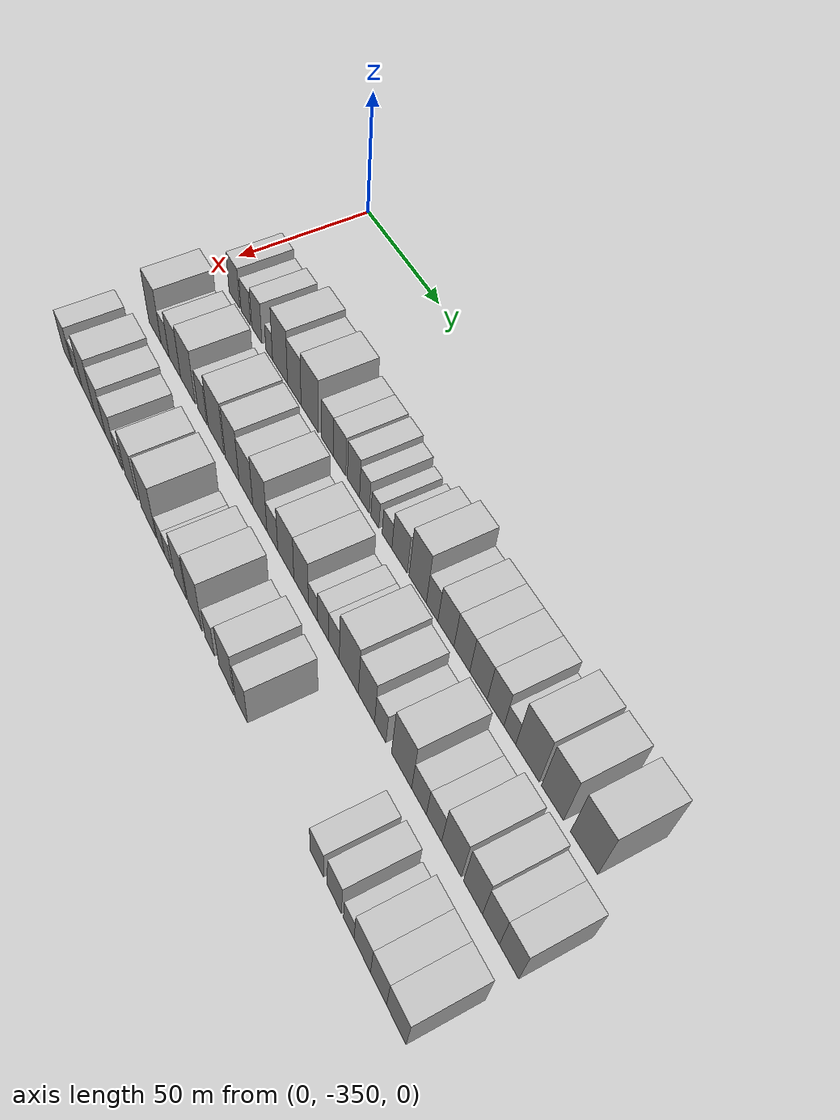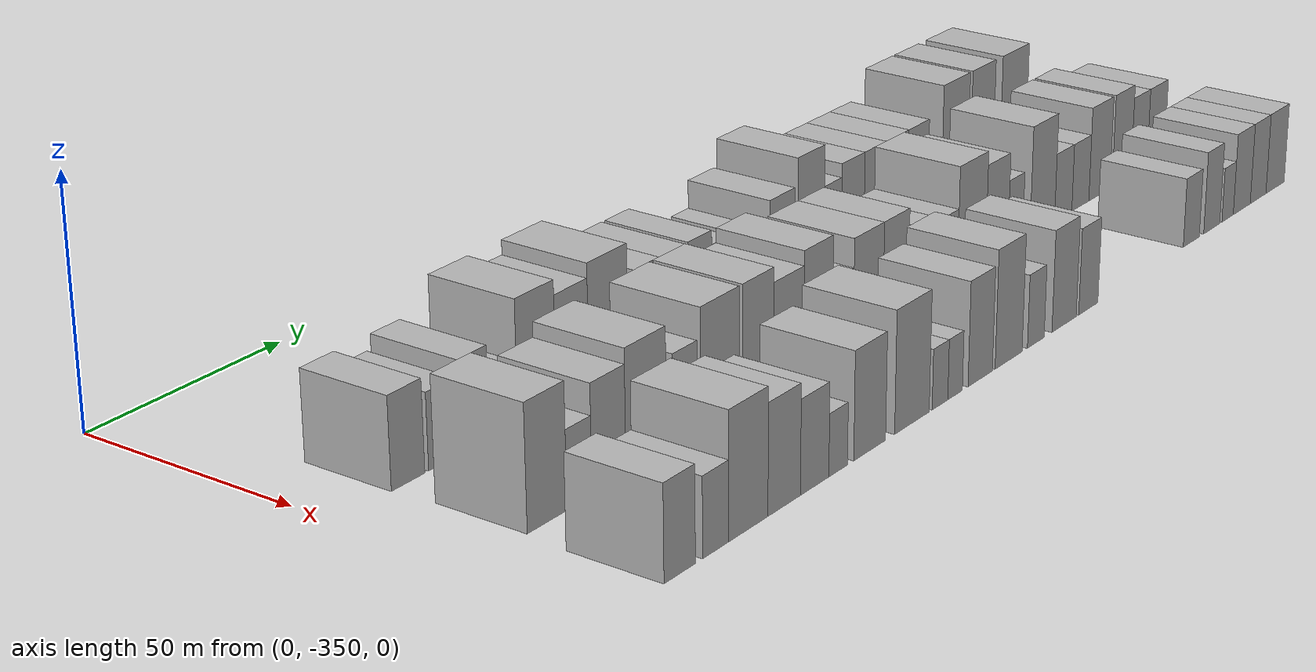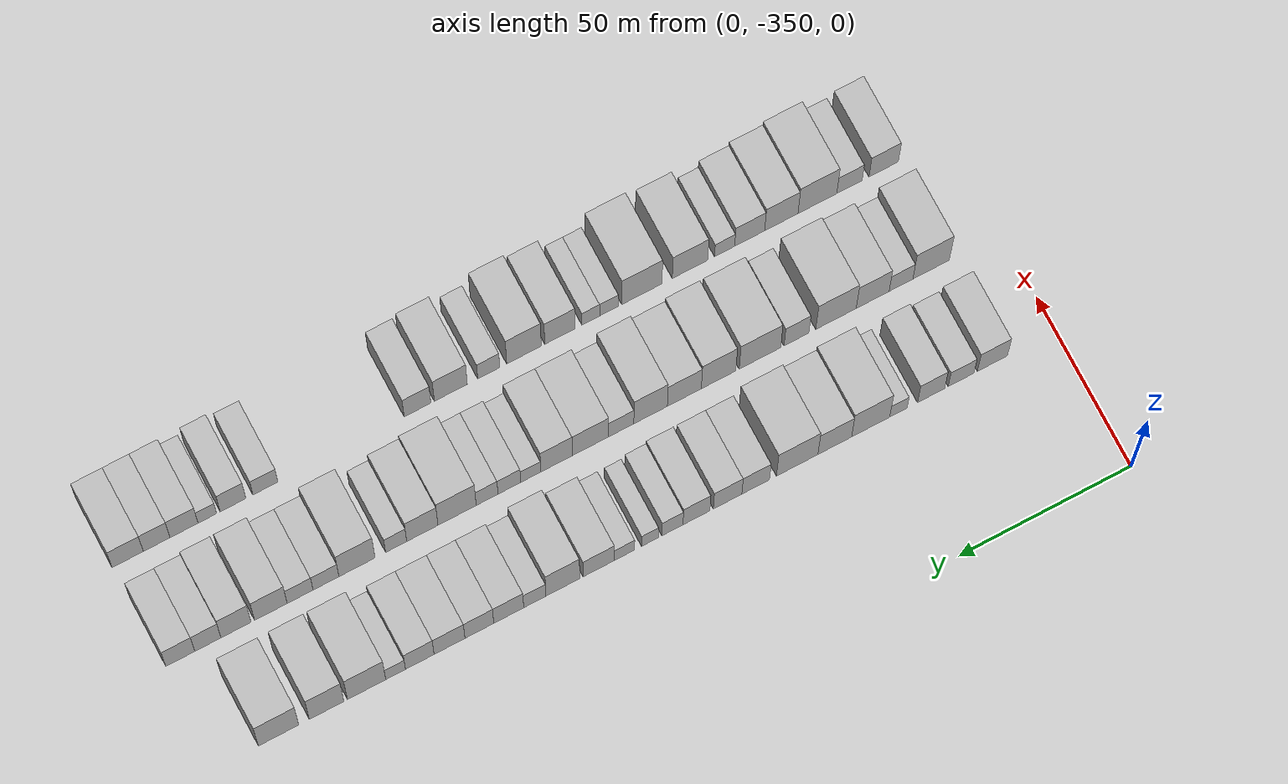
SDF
<sdf version="1.6">
 <world name="default">
  <model name="building_1">
   <static>1</static>
   <pose>50.0000 -331.6397 0 0.000000 0.000000 0.000000</pose>
   <link name="link">
    <pose>0 0 9.00 0 0 0</pose>
    <collision name="collision"><geometry><box><size>20.0000 8.7205 18.0000</size></box></geometry></collision>
    <visual name="visual">
     <cast_shadows>0</cast_shadows>
     <geometry><box><size>20.0000 8.7205 18.0000</size></box></geometry>
     <material>
      <script>
       <uri>model://HANNAS_wall/materials/scripts</uri>
       <uri>model://HANNAS_wall/materials/textures</uri>
       <name>vrc/HANNAS_wall</name>
      </script>
     </material>
    </visual>
   </link>
  </model>
  <model name="building_2">
   <static>1</static>
   <pose>50.0000 -322.5313 0 0.000000 0.000000 0.000000</pose>
   <link name="link">
    <pose>0 0 7.50 0 0 0</pose>
    <collision name="collision"><geometry><box><size>20.0000 7.4964 15.0000</size></box></geometry></collision>
    <visual name="visual">
     <cast_shadows>0</cast_shadows>
     <geometry><box><size>20.0000 7.4964 15.0000</size></box></geometry>
     <material>
      <script>
       <uri>model://HANNAS_wall/materials/scripts</uri>
       <uri>model://HANNAS_wall/materials/textures</uri>
       <name>vrc/HANNAS_wall</name>
      </script>
     </material>
    </visual>
   </link>
  </model>
  <model name="building_3">
   <static>1</static>
   <pose>50.0000 -313.8501 0 0.000000 0.000000 0.000000</pose>
   <link name="link">
    <pose>0 0 9.00 0 0 0</pose>
    <collision name="collision"><geometry><box><size>20.0000 7.8660 18.0000</size></box></geometry></collision>
    <visual name="visual">
     <cast_shadows>0</cast_shadows>
     <geometry><box><size>20.0000 7.8660 18.0000</size></box></geometry>
     <material>
      <script>
       <uri>model://HANNAS_wall/materials/scripts</uri>
       <uri>model://HANNAS_wall/materials/textures</uri>
       <name>vrc/HANNAS_wall</name>
      </script>
     </material>
    </visual>
   </link>
  </model>
  <model name="building_4">
   <static>1</static>
   <pose>50.0000 -304.3838 0 0.000000 0.000000 0.000000</pose>
   <link name="link">
    <pose>0 0 6.00 0 0 0</pose>
    <collision name="collision"><geometry><box><size>20.0000 5.0666 12.0000</size></box></geometry></collision>
    <visual name="visual">
     <cast_shadows>0</cast_shadows>
     <geometry><box><size>20.0000 5.0666 12.0000</size></box></geometry>
     <material>
      <script>
       <uri>model://HANNAS_wall/materials/scripts</uri>
       <uri>model://HANNAS_wall/materials/textures</uri>
       <name>vrc/HANNAS_wall</name>
      </script>
     </material>
    </visual>
   </link>
  </model>
  <model name="building_5">
   <static>1</static>
   <pose>50.0000 -296.3426 0 0.000000 0.000000 0.000000</pose>
   <link name="link">
    <pose>0 0 12.00 0 0 0</pose>
    <collision name="collision"><geometry><box><size>20.0000 11.0157 24.0000</size></box></geometry></collision>
    <visual name="visual">
     <cast_shadows>0</cast_shadows>
     <geometry><box><size>20.0000 11.0157 24.0000</size></box></geometry>
     <material>
      <script>
       <uri>model://HANNAS_wall/materials/scripts</uri>
       <uri>model://HANNAS_wall/materials/textures</uri>
       <name>vrc/HANNAS_wall</name>
      </script>
     </material>
    </visual>
   </link>
  </model>
  <model name="building_6">
   <static>1</static>
   <pose>50.0000 -285.9676 0 0.000000 0.000000 0.000000</pose>
   <link name="link">
    <pose>0 0 10.50 0 0 0</pose>
    <collision name="collision"><geometry><box><size>20.0000 9.7342 21.0000</size></box></geometry></collision>
    <visual name="visual">
     <cast_shadows>0</cast_shadows>
     <geometry><box><size>20.0000 9.7342 21.0000</size></box></geometry>
     <material>
      <script>
       <uri>model://HANNAS_wall/materials/scripts</uri>
       <uri>model://HANNAS_wall/materials/textures</uri>
       <name>vrc/HANNAS_wall</name>
      </script>
     </material>
    </visual>
   </link>
  </model>
  <model name="building_7">
   <static>1</static>
   <pose>50.0000 -275.1267 0 0.000000 0.000000 0.000000</pose>
   <link name="link">
    <pose>0 0 12.00 0 0 0</pose>
    <collision name="collision"><geometry><box><size>20.0000 11.9476 24.0000</size></box></geometry></collision>
    <visual name="visual">
     <cast_shadows>0</cast_shadows>
     <geometry><box><size>20.0000 11.9476 24.0000</size></box></geometry>
     <material>
      <script>
       <uri>model://HANNAS_wall/materials/scripts</uri>
       <uri>model://HANNAS_wall/materials/textures</uri>
       <name>vrc/HANNAS_wall</name>
      </script>
     </material>
    </visual>
   </link>
  </model>
  <model name="building_8">
   <static>1</static>
   <pose>50.0000 -263.1664 0 0.000000 0.000000 0.000000</pose>
   <link name="link">
    <pose>0 0 9.00 0 0 0</pose>
    <collision name="collision"><geometry><box><size>20.0000 7.9730 18.0000</size></box></geometry></collision>
    <visual name="visual">
     <cast_shadows>0</cast_shadows>
     <geometry><box><size>20.0000 7.9730 18.0000</size></box></geometry>
     <material>
      <script>
       <uri>model://HANNAS_wall/materials/scripts</uri>
       <uri>model://HANNAS_wall/materials/textures</uri>
       <name>vrc/HANNAS_wall</name>
      </script>
     </material>
    </visual>
   </link>
  </model>
  <model name="building_9">
   <static>1</static>
   <pose>50.0000 -255.0837 0 0.000000 0.000000 0.000000</pose>
   <link name="link">
    <pose>0 0 9.00 0 0 0</pose>
    <collision name="collision"><geometry><box><size>20.0000 8.1924 18.0000</size></box></geometry></collision>
    <visual name="visual">
     <cast_shadows>0</cast_shadows>
     <geometry><box><size>20.0000 8.1924 18.0000</size></box></geometry>
     <material>
      <script>
       <uri>model://HANNAS_wall/materials/scripts</uri>
       <uri>model://HANNAS_wall/materials/textures</uri>
       <name>vrc/HANNAS_wall</name>
      </script>
     </material>
    </visual>
   </link>
  </model>
  <model name="building_10">
   <static>1</static>
   <pose>50.0000 -246.1191 0 0.000000 0.000000 0.000000</pose>
   <link name="link">
    <pose>0 0 9.00 0 0 0</pose>
    <collision name="collision"><geometry><box><size>20.0000 7.7369 18.0000</size></box></geometry></collision>
    <visual name="visual">
     <cast_shadows>0</cast_shadows>
     <geometry><box><size>20.0000 7.7369 18.0000</size></box></geometry>
     <material>
      <script>
       <uri>model://HANNAS_wall/materials/scripts</uri>
       <uri>model://HANNAS_wall/materials/textures</uri>
       <name>vrc/HANNAS_wall</name>
      </script>
     </material>
    </visual>
   </link>
  </model>
  <model name="building_11">
   <static>1</static>
   <pose>50.0000 -239.2232 0 0.000000 0.000000 0.000000</pose>
   <link name="link">
    <pose>0 0 7.50 0 0 0</pose>
    <collision name="collision"><geometry><box><size>20.0000 6.0549 15.0000</size></box></geometry></collision>
    <visual name="visual">
     <cast_shadows>0</cast_shadows>
     <geometry><box><size>20.0000 6.0549 15.0000</size></box></geometry>
     <material>
      <script>
       <uri>model://HANNAS_wall/materials/scripts</uri>
       <uri>model://HANNAS_wall/materials/textures</uri>
       <name>vrc/HANNAS_wall</name>
      </script>
     </material>
    </visual>
   </link>
  </model>
  <model name="building_12">
   <static>1</static>
   <pose>50.0000 -232.7923 0 0.000000 0.000000 0.000000</pose>
   <link name="link">
    <pose>0 0 6.00 0 0 0</pose>
    <collision name="collision"><geometry><box><size>20.0000 4.8070 12.0000</size></box></geometry></collision>
    <visual name="visual">
     <cast_shadows>0</cast_shadows>
     <geometry><box><size>20.0000 4.8070 12.0000</size></box></geometry>
     <material>
      <script>
       <uri>model://HANNAS_wall/materials/scripts</uri>
       <uri>model://HANNAS_wall/materials/textures</uri>
       <name>vrc/HANNAS_wall</name>
      </script>
     </material>
    </visual>
   </link>
  </model>
  <model name="building_13">
   <static>1</static>
   <pose>50.0000 -225.4865 0 0.000000 0.000000 0.000000</pose>
   <link name="link">
    <pose>0 0 6.00 0 0 0</pose>
    <collision name="collision"><geometry><box><size>20.0000 5.8045 12.0000</size></box></geometry></collision>
    <visual name="visual">
     <cast_shadows>0</cast_shadows>
     <geometry><box><size>20.0000 5.8045 12.0000</size></box></geometry>
     <material>
      <script>
       <uri>model://HANNAS_wall/materials/scripts</uri>
       <uri>model://HANNAS_wall/materials/textures</uri>
       <name>vrc/HANNAS_wall</name>
      </script>
     </material>
    </visual>
   </link>
  </model>
  <model name="building_14">
   <static>1</static>
   <pose>50.0000 -218.1348 0 0.000000 0.000000 0.000000</pose>
   <link name="link">
    <pose>0 0 9.00 0 0 0</pose>
    <collision name="collision"><geometry><box><size>20.0000 8.8989 18.0000</size></box></geometry></collision>
    <visual name="visual">
     <cast_shadows>0</cast_shadows>
     <geometry><box><size>20.0000 8.8989 18.0000</size></box></geometry>
     <material>
      <script>
       <uri>model://HANNAS_wall/materials/scripts</uri>
       <uri>model://HANNAS_wall/materials/textures</uri>
       <name>vrc/HANNAS_wall</name>
      </script>
     </material>
    </visual>
   </link>
  </model>
  <model name="building_15">
   <static>1</static>
   <pose>50.0000 -207.8480 0 0.000000 0.000000 0.000000</pose>
   <link name="link">
    <pose>0 0 12.00 0 0 0</pose>
    <collision name="collision"><geometry><box><size>20.0000 9.6747 24.0000</size></box></geometry></collision>
    <visual name="visual">
     <cast_shadows>0</cast_shadows>
     <geometry><box><size>20.0000 9.6747 24.0000</size></box></geometry>
     <material>
      <script>
       <uri>model://HANNAS_wall/materials/scripts</uri>
       <uri>model://HANNAS_wall/materials/textures</uri>
       <name>vrc/HANNAS_wall</name>
      </script>
     </material>
    </visual>
   </link>
  </model>
  <model name="building_16">
   <static>1</static>
   <pose>50.0000 -199.8449 0 0.000000 0.000000 0.000000</pose>
   <link name="link">
    <pose>0 0 7.50 0 0 0</pose>
    <collision name="collision"><geometry><box><size>20.0000 6.3316 15.0000</size></box></geometry></collision>
    <visual name="visual">
     <cast_shadows>0</cast_shadows>
     <geometry><box><size>20.0000 6.3316 15.0000</size></box></geometry>
     <material>
      <script>
       <uri>model://HANNAS_wall/materials/scripts</uri>
       <uri>model://HANNAS_wall/materials/textures</uri>
       <name>vrc/HANNAS_wall</name>
      </script>
     </material>
    </visual>
   </link>
  </model>
  <model name="building_17">
   <static>1</static>
   <pose>50.0000 -192.4107 0 0.000000 0.000000 0.000000</pose>
   <link name="link">
    <pose>0 0 9.00 0 0 0</pose>
    <collision name="collision"><geometry><box><size>20.0000 8.5367 18.0000</size></box></geometry></collision>
    <visual name="visual">
     <cast_shadows>0</cast_shadows>
     <geometry><box><size>20.0000 8.5367 18.0000</size></box></geometry>
     <material>
      <script>
       <uri>model://HANNAS_wall/materials/scripts</uri>
       <uri>model://HANNAS_wall/materials/textures</uri>
       <name>vrc/HANNAS_wall</name>
      </script>
     </material>
    </visual>
   </link>
  </model>
  <model name="building_18">
   <static>1</static>
   <pose>50.0000 -184.0415 0 0.000000 0.000000 0.000000</pose>
   <link name="link">
    <pose>0 0 9.00 0 0 0</pose>
    <collision name="collision"><geometry><box><size>20.0000 8.2016 18.0000</size></box></geometry></collision>
    <visual name="visual">
     <cast_shadows>0</cast_shadows>
     <geometry><box><size>20.0000 8.2016 18.0000</size></box></geometry>
     <material>
      <script>
       <uri>model://HANNAS_wall/materials/scripts</uri>
       <uri>model://HANNAS_wall/materials/textures</uri>
       <name>vrc/HANNAS_wall</name>
      </script>
     </material>
    </visual>
   </link>
  </model>
  <model name="building_19">
   <static>1</static>
   <pose>50.0000 -175.5516 0 0.000000 0.000000 0.000000</pose>
   <link name="link">
    <pose>0 0 9.00 0 0 0</pose>
    <collision name="collision"><geometry><box><size>20.0000 8.7783 18.0000</size></box></geometry></collision>
    <visual name="visual">
     <cast_shadows>0</cast_shadows>
     <geometry><box><size>20.0000 8.7783 18.0000</size></box></geometry>
     <material>
      <script>
       <uri>model://HANNAS_wall/materials/scripts</uri>
       <uri>model://HANNAS_wall/materials/textures</uri>
       <name>vrc/HANNAS_wall</name>
      </script>
     </material>
    </visual>
   </link>
  </model>
  <model name="building_20">
   <static>1</static>
   <pose>50.0000 -167.0960 0 0.000000 0.000000 0.000000</pose>
   <link name="link">
    <pose>0 0 9.00 0 0 0</pose>
    <collision name="collision"><geometry><box><size>20.0000 8.1327 18.0000</size></box></geometry></collision>
    <visual name="visual">
     <cast_shadows>0</cast_shadows>
     <geometry><box><size>20.0000 8.1327 18.0000</size></box></geometry>
     <material>
      <script>
       <uri>model://HANNAS_wall/materials/scripts</uri>
       <uri>model://HANNAS_wall/materials/textures</uri>
       <name>vrc/HANNAS_wall</name>
      </script>
     </material>
    </visual>
   </link>
  </model>
  <model name="building_21">
   <static>1</static>
   <pose>50.0000 -160.2294 0 0.000000 0.000000 0.000000</pose>
   <link name="link">
    <pose>0 0 6.00 0 0 0</pose>
    <collision name="collision"><geometry><box><size>20.0000 5.6006 12.0000</size></box></geometry></collision>
    <visual name="visual">
     <cast_shadows>0</cast_shadows>
     <geometry><box><size>20.0000 5.6006 12.0000</size></box></geometry>
     <material>
      <script>
       <uri>model://HANNAS_wall/materials/scripts</uri>
       <uri>model://HANNAS_wall/materials/textures</uri>
       <name>vrc/HANNAS_wall</name>
      </script>
     </material>
    </visual>
   </link>
  </model>
  <model name="building_22">
   <static>1</static>
   <pose>50.0000 -151.9978 0 0.000000 0.000000 0.000000</pose>
   <link name="link">
    <pose>0 0 12.00 0 0 0</pose>
    <collision name="collision"><geometry><box><size>20.0000 10.8625 24.0000</size></box></geometry></collision>
    <visual name="visual">
     <cast_shadows>0</cast_shadows>
     <geometry><box><size>20.0000 10.8625 24.0000</size></box></geometry>
     <material>
      <script>
       <uri>model://HANNAS_wall/materials/scripts</uri>
       <uri>model://HANNAS_wall/materials/textures</uri>
       <name>vrc/HANNAS_wall</name>
      </script>
     </material>
    </visual>
   </link>
  </model>
  <model name="building_23">
   <static>1</static>
   <pose>50.0000 -140.6740 0 0.000000 0.000000 0.000000</pose>
   <link name="link">
    <pose>0 0 12.00 0 0 0</pose>
    <collision name="collision"><geometry><box><size>20.0000 9.7850 24.0000</size></box></geometry></collision>
    <visual name="visual">
     <cast_shadows>0</cast_shadows>
     <geometry><box><size>20.0000 9.7850 24.0000</size></box></geometry>
     <material>
      <script>
       <uri>model://HANNAS_wall/materials/scripts</uri>
       <uri>model://HANNAS_wall/materials/textures</uri>
       <name>vrc/HANNAS_wall</name>
      </script>
     </material>
    </visual>
   </link>
  </model>
  <model name="building_24">
   <static>1</static>
   <pose>50.0000 -127.0697 0 0.000000 0.000000 0.000000</pose>
   <link name="link">
    <pose>0 0 12.00 0 0 0</pose>
    <collision name="collision"><geometry><box><size>20.0000 11.4236 24.0000</size></box></geometry></collision>
    <visual name="visual">
     <cast_shadows>0</cast_shadows>
     <geometry><box><size>20.0000 11.4236 24.0000</size></box></geometry>
     <material>
      <script>
       <uri>model://HANNAS_wall/materials/scripts</uri>
       <uri>model://HANNAS_wall/materials/textures</uri>
       <name>vrc/HANNAS_wall</name>
      </script>
     </material>
    </visual>
   </link>
  </model>
  <model name="building_74">
   <static>1</static>
   <pose>79.0000 -329.6952 0 0.000000 0.000000 0.000000</pose>
   <link name="link">
    <pose>0 0 12.00 0 0 0</pose>
    <collision name="collision"><geometry><box><size>20.0000 10.6097 24.0000</size></box></geometry></collision>
    <visual name="visual">
     <cast_shadows>0</cast_shadows>
     <geometry><box><size>20.0000 10.6097 24.0000</size></box></geometry>
     <material>
      <script>
       <uri>model://HANNAS_wall/materials/scripts</uri>
       <uri>model://HANNAS_wall/materials/textures</uri>
       <name>vrc/HANNAS_wall</name>
      </script>
     </material>
    </visual>
   </link>
  </model>
  <model name="building_75">
   <static>1</static>
   <pose>79.0000 -320.9436 0 0.000000 0.000000 0.000000</pose>
   <link name="link">
    <pose>0 0 7.50 0 0 0</pose>
    <collision name="collision"><geometry><box><size>20.0000 6.8934 15.0000</size></box></geometry></collision>
    <visual name="visual">
     <cast_shadows>0</cast_shadows>
     <geometry><box><size>20.0000 6.8934 15.0000</size></box></geometry>
     <material>
      <script>
       <uri>model://HANNAS_wall/materials/scripts</uri>
       <uri>model://HANNAS_wall/materials/textures</uri>
       <name>vrc/HANNAS_wall</name>
      </script>
     </material>
    </visual>
   </link>
  </model>
  <model name="building_76">
   <static>1</static>
   <pose>79.0000 -312.7170 0 0.000000 0.000000 0.000000</pose>
   <link name="link">
    <pose>0 0 10.50 0 0 0</pose>
    <collision name="collision"><geometry><box><size>20.0000 9.5599 21.0000</size></box></geometry></collision>
    <visual name="visual">
     <cast_shadows>0</cast_shadows>
     <geometry><box><size>20.0000 9.5599 21.0000</size></box></geometry>
     <material>
      <script>
       <uri>model://HANNAS_wall/materials/scripts</uri>
       <uri>model://HANNAS_wall/materials/textures</uri>
       <name>vrc/HANNAS_wall</name>
      </script>
     </material>
    </visual>
   </link>
  </model>
  <model name="building_77">
   <static>1</static>
   <pose>79.0000 -302.0661 0 0.000000 0.000000 0.000000</pose>
   <link name="link">
    <pose>0 0 12.00 0 0 0</pose>
    <collision name="collision"><geometry><box><size>20.0000 11.7419 24.0000</size></box></geometry></collision>
    <visual name="visual">
     <cast_shadows>0</cast_shadows>
     <geometry><box><size>20.0000 11.7419 24.0000</size></box></geometry>
     <material>
      <script>
       <uri>model://HANNAS_wall/materials/scripts</uri>
       <uri>model://HANNAS_wall/materials/textures</uri>
       <name>vrc/HANNAS_wall</name>
      </script>
     </material>
    </visual>
   </link>
  </model>
  <model name="building_78">
   <static>1</static>
   <pose>79.0000 -290.5935 0 0.000000 0.000000 0.000000</pose>
   <link name="link">
    <pose>0 0 9.00 0 0 0</pose>
    <collision name="collision"><geometry><box><size>20.0000 7.2033 18.0000</size></box></geometry></collision>
    <visual name="visual">
     <cast_shadows>0</cast_shadows>
     <geometry><box><size>20.0000 7.2033 18.0000</size></box></geometry>
     <material>
      <script>
       <uri>model://HANNAS_wall/materials/scripts</uri>
       <uri>model://HANNAS_wall/materials/textures</uri>
       <name>vrc/HANNAS_wall</name>
      </script>
     </material>
    </visual>
   </link>
  </model>
  <model name="building_79">
   <static>1</static>
   <pose>79.0000 -280.0081 0 0.000000 0.000000 0.000000</pose>
   <link name="link">
    <pose>0 0 12.00 0 0 0</pose>
    <collision name="collision"><geometry><box><size>20.0000 11.9673 24.0000</size></box></geometry></collision>
    <visual name="visual">
     <cast_shadows>0</cast_shadows>
     <geometry><box><size>20.0000 11.9673 24.0000</size></box></geometry>
     <material>
      <script>
       <uri>model://HANNAS_wall/materials/scripts</uri>
       <uri>model://HANNAS_wall/materials/textures</uri>
       <name>vrc/HANNAS_wall</name>
      </script>
     </material>
    </visual>
   </link>
  </model>
  <model name="building_80">
   <static>1</static>
   <pose>79.0000 -268.0527 0 0.000000 0.000000 0.000000</pose>
   <link name="link">
    <pose>0 0 12.00 0 0 0</pose>
    <collision name="collision"><geometry><box><size>20.0000 9.9436 24.0000</size></box></geometry></collision>
    <visual name="visual">
     <cast_shadows>0</cast_shadows>
     <geometry><box><size>20.0000 9.9436 24.0000</size></box></geometry>
     <material>
      <script>
       <uri>model://HANNAS_wall/materials/scripts</uri>
       <uri>model://HANNAS_wall/materials/textures</uri>
       <name>vrc/HANNAS_wall</name>
      </script>
     </material>
    </visual>
   </link>
  </model>
  <model name="building_81">
   <static>1</static>
   <pose>79.0000 -258.1868 0 0.000000 0.000000 0.000000</pose>
   <link name="link">
    <pose>0 0 10.50 0 0 0</pose>
    <collision name="collision"><geometry><box><size>20.0000 9.7882 21.0000</size></box></geometry></collision>
    <visual name="visual">
     <cast_shadows>0</cast_shadows>
     <geometry><box><size>20.0000 9.7882 21.0000</size></box></geometry>
     <material>
      <script>
       <uri>model://HANNAS_wall/materials/scripts</uri>
       <uri>model://HANNAS_wall/materials/textures</uri>
       <name>vrc/HANNAS_wall</name>
      </script>
     </material>
    </visual>
   </link>
  </model>
  <model name="building_82">
   <static>1</static>
   <pose>79.0000 -248.4612 0 0.000000 0.000000 0.000000</pose>
   <link name="link">
    <pose>0 0 12.00 0 0 0</pose>
    <collision name="collision"><geometry><box><size>20.0000 9.6630 24.0000</size></box></geometry></collision>
    <visual name="visual">
     <cast_shadows>0</cast_shadows>
     <geometry><box><size>20.0000 9.6630 24.0000</size></box></geometry>
     <material>
      <script>
       <uri>model://HANNAS_wall/materials/scripts</uri>
       <uri>model://HANNAS_wall/materials/textures</uri>
       <name>vrc/HANNAS_wall</name>
      </script>
     </material>
    </visual>
   </link>
  </model>
  <model name="building_83">
   <static>1</static>
   <pose>79.0000 -240.0196 0 0.000000 0.000000 0.000000</pose>
   <link name="link">
    <pose>0 0 7.50 0 0 0</pose>
    <collision name="collision"><geometry><box><size>20.0000 7.2202 15.0000</size></box></geometry></collision>
    <visual name="visual">
     <cast_shadows>0</cast_shadows>
     <geometry><box><size>20.0000 7.2202 15.0000</size></box></geometry>
     <material>
      <script>
       <uri>model://HANNAS_wall/materials/scripts</uri>
       <uri>model://HANNAS_wall/materials/textures</uri>
       <name>vrc/HANNAS_wall</name>
      </script>
     </material>
    </visual>
   </link>
  </model>
  <model name="building_84">
   <static>1</static>
   <pose>79.0000 -231.1957 0 0.000000 0.000000 0.000000</pose>
   <link name="link">
    <pose>0 0 10.50 0 0 0</pose>
    <collision name="collision"><geometry><box><size>20.0000 10.4277 21.0000</size></box></geometry></collision>
    <visual name="visual">
     <cast_shadows>0</cast_shadows>
     <geometry><box><size>20.0000 10.4277 21.0000</size></box></geometry>
     <material>
      <script>
       <uri>model://HANNAS_wall/materials/scripts</uri>
       <uri>model://HANNAS_wall/materials/textures</uri>
       <name>vrc/HANNAS_wall</name>
      </script>
     </material>
    </visual>
   </link>
  </model>
  <model name="building_85">
   <static>1</static>
   <pose>79.0000 -221.4396 0 0.000000 0.000000 0.000000</pose>
   <link name="link">
    <pose>0 0 10.50 0 0 0</pose>
    <collision name="collision"><geometry><box><size>20.0000 9.0845 21.0000</size></box></geometry></collision>
    <visual name="visual">
     <cast_shadows>0</cast_shadows>
     <geometry><box><size>20.0000 9.0845 21.0000</size></box></geometry>
     <material>
      <script>
       <uri>model://HANNAS_wall/materials/scripts</uri>
       <uri>model://HANNAS_wall/materials/textures</uri>
       <name>vrc/HANNAS_wall</name>
      </script>
     </material>
    </visual>
   </link>
  </model>
  <model name="building_86">
   <static>1</static>
   <pose>79.0000 -214.0187 0 0.000000 0.000000 0.000000</pose>
   <link name="link">
    <pose>0 0 6.00 0 0 0</pose>
    <collision name="collision"><geometry><box><size>20.0000 5.7572 12.0000</size></box></geometry></collision>
    <visual name="visual">
     <cast_shadows>0</cast_shadows>
     <geometry><box><size>20.0000 5.7572 12.0000</size></box></geometry>
     <material>
      <script>
       <uri>model://HANNAS_wall/materials/scripts</uri>
       <uri>model://HANNAS_wall/materials/textures</uri>
       <name>vrc/HANNAS_wall</name>
      </script>
     </material>
    </visual>
   </link>
  </model>
  <model name="building_87">
   <static>1</static>
   <pose>79.0000 -207.8769 0 0.000000 0.000000 0.000000</pose>
   <link name="link">
    <pose>0 0 7.50 0 0 0</pose>
    <collision name="collision"><geometry><box><size>20.0000 6.5265 15.0000</size></box></geometry></collision>
    <visual name="visual">
     <cast_shadows>0</cast_shadows>
     <geometry><box><size>20.0000 6.5265 15.0000</size></box></geometry>
     <material>
      <script>
       <uri>model://HANNAS_wall/materials/scripts</uri>
       <uri>model://HANNAS_wall/materials/textures</uri>
       <name>vrc/HANNAS_wall</name>
      </script>
     </material>
    </visual>
   </link>
  </model>
  <model name="building_88">
   <static>1</static>
   <pose>79.0000 -201.4958 0 0.000000 0.000000 0.000000</pose>
   <link name="link">
    <pose>0 0 7.50 0 0 0</pose>
    <collision name="collision"><geometry><box><size>20.0000 6.2356 15.0000</size></box></geometry></collision>
    <visual name="visual">
     <cast_shadows>0</cast_shadows>
     <geometry><box><size>20.0000 6.2356 15.0000</size></box></geometry>
     <material>
      <script>
       <uri>model://HANNAS_wall/materials/scripts</uri>
       <uri>model://HANNAS_wall/materials/textures</uri>
       <name>vrc/HANNAS_wall</name>
      </script>
     </material>
    </visual>
   </link>
  </model>
  <model name="building_89">
   <static>1</static>
   <pose>79.0000 -192.9186 0 0.000000 0.000000 0.000000</pose>
   <link name="link">
    <pose>0 0 12.00 0 0 0</pose>
    <collision name="collision"><geometry><box><size>20.0000 10.9186 24.0000</size></box></geometry></collision>
    <visual name="visual">
     <cast_shadows>0</cast_shadows>
     <geometry><box><size>20.0000 10.9186 24.0000</size></box></geometry>
     <material>
      <script>
       <uri>model://HANNAS_wall/materials/scripts</uri>
       <uri>model://HANNAS_wall/materials/textures</uri>
       <name>vrc/HANNAS_wall</name>
      </script>
     </material>
    </visual>
   </link>
  </model>
  <model name="building_90">
   <static>1</static>
   <pose>79.0000 -183.0087 0 0.000000 0.000000 0.000000</pose>
   <link name="link">
    <pose>0 0 10.50 0 0 0</pose>
    <collision name="collision"><geometry><box><size>20.0000 8.9011 21.0000</size></box></geometry></collision>
    <visual name="visual">
     <cast_shadows>0</cast_shadows>
     <geometry><box><size>20.0000 8.9011 21.0000</size></box></geometry>
     <material>
      <script>
       <uri>model://HANNAS_wall/materials/scripts</uri>
       <uri>model://HANNAS_wall/materials/textures</uri>
       <name>vrc/HANNAS_wall</name>
      </script>
     </material>
    </visual>
   </link>
  </model>
  <model name="building_91">
   <static>1</static>
   <pose>79.0000 -175.5439 0 0.000000 0.000000 0.000000</pose>
   <link name="link">
    <pose>0 0 7.50 0 0 0</pose>
    <collision name="collision"><geometry><box><size>20.0000 6.0286 15.0000</size></box></geometry></collision>
    <visual name="visual">
     <cast_shadows>0</cast_shadows>
     <geometry><box><size>20.0000 6.0286 15.0000</size></box></geometry>
     <material>
      <script>
       <uri>model://HANNAS_wall/materials/scripts</uri>
       <uri>model://HANNAS_wall/materials/textures</uri>
       <name>vrc/HANNAS_wall</name>
      </script>
     </material>
    </visual>
   </link>
  </model>
  <model name="building_92">
   <static>1</static>
   <pose>79.0000 -164.3843 0 0.000000 0.000000 0.000000</pose>
   <link name="link">
    <pose>0 0 12.00 0 0 0</pose>
    <collision name="collision"><geometry><box><size>20.0000 10.2905 24.0000</size></box></geometry></collision>
    <visual name="visual">
     <cast_shadows>0</cast_shadows>
     <geometry><box><size>20.0000 10.2905 24.0000</size></box></geometry>
     <material>
      <script>
       <uri>model://HANNAS_wall/materials/scripts</uri>
       <uri>model://HANNAS_wall/materials/textures</uri>
       <name>vrc/HANNAS_wall</name>
      </script>
     </material>
    </visual>
   </link>
  </model>
  <model name="building_93">
   <static>1</static>
   <pose>79.0000 -155.5538 0 0.000000 0.000000 0.000000</pose>
   <link name="link">
    <pose>0 0 7.50 0 0 0</pose>
    <collision name="collision"><geometry><box><size>20.0000 7.3704 15.0000</size></box></geometry></collision>
    <visual name="visual">
     <cast_shadows>0</cast_shadows>
     <geometry><box><size>20.0000 7.3704 15.0000</size></box></geometry>
     <material>
      <script>
       <uri>model://HANNAS_wall/materials/scripts</uri>
       <uri>model://HANNAS_wall/materials/textures</uri>
       <name>vrc/HANNAS_wall</name>
      </script>
     </material>
    </visual>
   </link>
  </model>
  <model name="building_94">
   <static>1</static>
   <pose>79.0000 -148.1777 0 0.000000 0.000000 0.000000</pose>
   <link name="link">
    <pose>0 0 7.50 0 0 0</pose>
    <collision name="collision"><geometry><box><size>20.0000 7.3819 15.0000</size></box></geometry></collision>
    <visual name="visual">
     <cast_shadows>0</cast_shadows>
     <geometry><box><size>20.0000 7.3819 15.0000</size></box></geometry>
     <material>
      <script>
       <uri>model://HANNAS_wall/materials/scripts</uri>
       <uri>model://HANNAS_wall/materials/textures</uri>
       <name>vrc/HANNAS_wall</name>
      </script>
     </material>
    </visual>
   </link>
  </model>
  <model name="building_95">
   <static>1</static>
   <pose>79.0000 -139.8655 0 0.000000 0.000000 0.000000</pose>
   <link name="link">
    <pose>0 0 10.50 0 0 0</pose>
    <collision name="collision"><geometry><box><size>20.0000 9.2426 21.0000</size></box></geometry></collision>
    <visual name="visual">
     <cast_shadows>0</cast_shadows>
     <geometry><box><size>20.0000 9.2426 21.0000</size></box></geometry>
     <material>
      <script>
       <uri>model://HANNAS_wall/materials/scripts</uri>
       <uri>model://HANNAS_wall/materials/textures</uri>
       <name>vrc/HANNAS_wall</name>
      </script>
     </material>
    </visual>
   </link>
  </model>
  <model name="building_96">
   <static>1</static>
   <pose>79.0000 -129.9756 0 0.000000 0.000000 0.000000</pose>
   <link name="link">
    <pose>0 0 10.50 0 0 0</pose>
    <collision name="collision"><geometry><box><size>20.0000 8.5372 21.0000</size></box></geometry></collision>
    <visual name="visual">
     <cast_shadows>0</cast_shadows>
     <geometry><box><size>20.0000 8.5372 21.0000</size></box></geometry>
     <material>
      <script>
       <uri>model://HANNAS_wall/materials/scripts</uri>
       <uri>model://HANNAS_wall/materials/textures</uri>
       <name>vrc/HANNAS_wall</name>
      </script>
     </material>
    </visual>
   </link>
  </model>
  <model name="building_97">
   <static>1</static>
   <pose>79.0000 -122.0044 0 0.000000 0.000000 0.000000</pose>
   <link name="link">
    <pose>0 0 9.00 0 0 0</pose>
    <collision name="collision"><geometry><box><size>20.0000 7.4051 18.0000</size></box></geometry></collision>
    <visual name="visual">
     <cast_shadows>0</cast_shadows>
     <geometry><box><size>20.0000 7.4051 18.0000</size></box></geometry>
     <material>
      <script>
       <uri>model://HANNAS_wall/materials/scripts</uri>
       <uri>model://HANNAS_wall/materials/textures</uri>
       <name>vrc/HANNAS_wall</name>
      </script>
     </material>
    </visual>
   </link>
  </model>
  <model name="building_98">
   <static>1</static>
   <pose>79.0000 -114.1997 0 0.000000 0.000000 0.000000</pose>
   <link name="link">
    <pose>0 0 9.00 0 0 0</pose>
    <collision name="collision"><geometry><box><size>20.0000 8.2044 18.0000</size></box></geometry></collision>
    <visual name="visual">
     <cast_shadows>0</cast_shadows>
     <geometry><box><size>20.0000 8.2044 18.0000</size></box></geometry>
     <material>
      <script>
       <uri>model://HANNAS_wall/materials/scripts</uri>
       <uri>model://HANNAS_wall/materials/textures</uri>
       <name>vrc/HANNAS_wall</name>
      </script>
     </material>
    </visual>
   </link>
  </model>
  <model name="building_144">
   <static>1</static>
   <pose>108.0000 -331.7170 0 0.000000 0.000000 0.000000</pose>
   <link name="link">
    <pose>0 0 9.00 0 0 0</pose>
    <collision name="collision"><geometry><box><size>20.0000 8.5660 18.0000</size></box></geometry></collision>
    <visual name="visual">
     <cast_shadows>0</cast_shadows>
     <geometry><box><size>20.0000 8.5660 18.0000</size></box></geometry>
     <material>
      <script>
       <uri>model://HANNAS_wall/materials/scripts</uri>
       <uri>model://HANNAS_wall/materials/textures</uri>
       <name>vrc/HANNAS_wall</name>
      </script>
     </material>
    </visual>
   </link>
  </model>
  <model name="building_145">
   <static>1</static>
   <pose>108.0000 -321.7404 0 0.000000 0.000000 0.000000</pose>
   <link name="link">
    <pose>0 0 7.50 0 0 0</pose>
    <collision name="collision"><geometry><box><size>20.0000 7.3872 15.0000</size></box></geometry></collision>
    <visual name="visual">
     <cast_shadows>0</cast_shadows>
     <geometry><box><size>20.0000 7.3872 15.0000</size></box></geometry>
     <material>
      <script>
       <uri>model://HANNAS_wall/materials/scripts</uri>
       <uri>model://HANNAS_wall/materials/textures</uri>
       <name>vrc/HANNAS_wall</name>
      </script>
     </material>
    </visual>
   </link>
  </model>
  <model name="building_146">
   <static>1</static>
   <pose>108.0000 -312.3898 0 0.000000 0.000000 0.000000</pose>
   <link name="link">
    <pose>0 0 12.00 0 0 0</pose>
    <collision name="collision"><geometry><box><size>20.0000 11.3139 24.0000</size></box></geometry></collision>
    <visual name="visual">
     <cast_shadows>0</cast_shadows>
     <geometry><box><size>20.0000 11.3139 24.0000</size></box></geometry>
     <material>
      <script>
       <uri>model://HANNAS_wall/materials/scripts</uri>
       <uri>model://HANNAS_wall/materials/textures</uri>
       <name>vrc/HANNAS_wall</name>
      </script>
     </material>
    </visual>
   </link>
  </model>
  <model name="building_147">
   <static>1</static>
   <pose>108.0000 -301.8741 0 0.000000 0.000000 0.000000</pose>
   <link name="link">
    <pose>0 0 10.50 0 0 0</pose>
    <collision name="collision"><geometry><box><size>20.0000 9.7176 21.0000</size></box></geometry></collision>
    <visual name="visual">
     <cast_shadows>0</cast_shadows>
     <geometry><box><size>20.0000 9.7176 21.0000</size></box></geometry>
     <material>
      <script>
       <uri>model://HANNAS_wall/materials/scripts</uri>
       <uri>model://HANNAS_wall/materials/textures</uri>
       <name>vrc/HANNAS_wall</name>
      </script>
     </material>
    </visual>
   </link>
  </model>
  <model name="building_148">
   <static>1</static>
   <pose>108.0000 -292.6643 0 0.000000 0.000000 0.000000</pose>
   <link name="link">
    <pose>0 0 9.00 0 0 0</pose>
    <collision name="collision"><geometry><box><size>20.0000 8.7022 18.0000</size></box></geometry></collision>
    <visual name="visual">
     <cast_shadows>0</cast_shadows>
     <geometry><box><size>20.0000 8.7022 18.0000</size></box></geometry>
     <material>
      <script>
       <uri>model://HANNAS_wall/materials/scripts</uri>
       <uri>model://HANNAS_wall/materials/textures</uri>
       <name>vrc/HANNAS_wall</name>
      </script>
     </material>
    </visual>
   </link>
  </model>
  <model name="building_149">
   <static>1</static>
   <pose>108.0000 -285.3960 0 0.000000 0.000000 0.000000</pose>
   <link name="link">
    <pose>0 0 6.00 0 0 0</pose>
    <collision name="collision"><geometry><box><size>20.0000 5.8345 12.0000</size></box></geometry></collision>
    <visual name="visual">
     <cast_shadows>0</cast_shadows>
     <geometry><box><size>20.0000 5.8345 12.0000</size></box></geometry>
     <material>
      <script>
       <uri>model://HANNAS_wall/materials/scripts</uri>
       <uri>model://HANNAS_wall/materials/textures</uri>
       <name>vrc/HANNAS_wall</name>
      </script>
     </material>
    </visual>
   </link>
  </model>
  <model name="building_150">
   <static>1</static>
   <pose>108.0000 -275.3494 0 0.000000 0.000000 0.000000</pose>
   <link name="link">
    <pose>0 0 10.50 0 0 0</pose>
    <collision name="collision"><geometry><box><size>20.0000 10.2587 21.0000</size></box></geometry></collision>
    <visual name="visual">
     <cast_shadows>0</cast_shadows>
     <geometry><box><size>20.0000 10.2587 21.0000</size></box></geometry>
     <material>
      <script>
       <uri>model://HANNAS_wall/materials/scripts</uri>
       <uri>model://HANNAS_wall/materials/textures</uri>
       <name>vrc/HANNAS_wall</name>
      </script>
     </material>
    </visual>
   </link>
  </model>
  <model name="building_151">
   <static>1</static>
   <pose>108.0000 -261.4147 0 0.000000 0.000000 0.000000</pose>
   <link name="link">
    <pose>0 0 12.00 0 0 0</pose>
    <collision name="collision"><geometry><box><size>20.0000 11.6108 24.0000</size></box></geometry></collision>
    <visual name="visual">
     <cast_shadows>0</cast_shadows>
     <geometry><box><size>20.0000 11.6108 24.0000</size></box></geometry>
     <material>
      <script>
       <uri>model://HANNAS_wall/materials/scripts</uri>
       <uri>model://HANNAS_wall/materials/textures</uri>
       <name>vrc/HANNAS_wall</name>
      </script>
     </material>
    </visual>
   </link>
  </model>
  <model name="building_152">
   <static>1</static>
   <pose>108.0000 -251.9095 0 0.000000 0.000000 0.000000</pose>
   <link name="link">
    <pose>0 0 6.00 0 0 0</pose>
    <collision name="collision"><geometry><box><size>20.0000 5.3995 12.0000</size></box></geometry></collision>
    <visual name="visual">
     <cast_shadows>0</cast_shadows>
     <geometry><box><size>20.0000 5.3995 12.0000</size></box></geometry>
     <material>
      <script>
       <uri>model://HANNAS_wall/materials/scripts</uri>
       <uri>model://HANNAS_wall/materials/textures</uri>
       <name>vrc/HANNAS_wall</name>
      </script>
     </material>
    </visual>
   </link>
  </model>
  <model name="building_153">
   <static>1</static>
   <pose>108.0000 -246.6562 0 0.000000 0.000000 0.000000</pose>
   <link name="link">
    <pose>0 0 6.00 0 0 0</pose>
    <collision name="collision"><geometry><box><size>20.0000 5.1073 12.0000</size></box></geometry></collision>
    <visual name="visual">
     <cast_shadows>0</cast_shadows>
     <geometry><box><size>20.0000 5.1073 12.0000</size></box></geometry>
     <material>
      <script>
       <uri>model://HANNAS_wall/materials/scripts</uri>
       <uri>model://HANNAS_wall/materials/textures</uri>
       <name>vrc/HANNAS_wall</name>
      </script>
     </material>
    </visual>
   </link>
  </model>
  <model name="building_154">
   <static>1</static>
   <pose>108.0000 -237.7400 0 0.000000 0.000000 0.000000</pose>
   <link name="link">
    <pose>0 0 10.50 0 0 0</pose>
    <collision name="collision"><geometry><box><size>20.0000 8.7250 21.0000</size></box></geometry></collision>
    <visual name="visual">
     <cast_shadows>0</cast_shadows>
     <geometry><box><size>20.0000 8.7250 21.0000</size></box></geometry>
     <material>
      <script>
       <uri>model://HANNAS_wall/materials/scripts</uri>
       <uri>model://HANNAS_wall/materials/textures</uri>
       <name>vrc/HANNAS_wall</name>
      </script>
     </material>
    </visual>
   </link>
  </model>
  <model name="building_155">
   <static>1</static>
   <pose>108.0000 -227.3972 0 0.000000 0.000000 0.000000</pose>
   <link name="link">
    <pose>0 0 12.00 0 0 0</pose>
    <collision name="collision"><geometry><box><size>20.0000 9.9607 24.0000</size></box></geometry></collision>
    <visual name="visual">
     <cast_shadows>0</cast_shadows>
     <geometry><box><size>20.0000 9.9607 24.0000</size></box></geometry>
     <material>
      <script>
       <uri>model://HANNAS_wall/materials/scripts</uri>
       <uri>model://HANNAS_wall/materials/textures</uri>
       <name>vrc/HANNAS_wall</name>
      </script>
     </material>
    </visual>
   </link>
  </model>
  <model name="building_156">
   <static>1</static>
   <pose>108.0000 -217.2445 0 0.000000 0.000000 0.000000</pose>
   <link name="link">
    <pose>0 0 7.50 0 0 0</pose>
    <collision name="collision"><geometry><box><size>20.0000 6.3446 15.0000</size></box></geometry></collision>
    <visual name="visual">
     <cast_shadows>0</cast_shadows>
     <geometry><box><size>20.0000 6.3446 15.0000</size></box></geometry>
     <material>
      <script>
       <uri>model://HANNAS_wall/materials/scripts</uri>
       <uri>model://HANNAS_wall/materials/textures</uri>
       <name>vrc/HANNAS_wall</name>
      </script>
     </material>
    </visual>
   </link>
  </model>
  <model name="building_157">
   <static>1</static>
   <pose>108.0000 -206.3482 0 0.000000 0.000000 0.000000</pose>
   <link name="link">
    <pose>0 0 10.50 0 0 0</pose>
    <collision name="collision"><geometry><box><size>20.0000 9.4481 21.0000</size></box></geometry></collision>
    <visual name="visual">
     <cast_shadows>0</cast_shadows>
     <geometry><box><size>20.0000 9.4481 21.0000</size></box></geometry>
     <material>
      <script>
       <uri>model://HANNAS_wall/materials/scripts</uri>
       <uri>model://HANNAS_wall/materials/textures</uri>
       <name>vrc/HANNAS_wall</name>
      </script>
     </material>
    </visual>
   </link>
  </model>
  <model name="building_158">
   <static>1</static>
   <pose>108.0000 -196.7949 0 0.000000 0.000000 0.000000</pose>
   <link name="link">
    <pose>0 0 9.00 0 0 0</pose>
    <collision name="collision"><geometry><box><size>20.0000 7.6584 18.0000</size></box></geometry></collision>
    <visual name="visual">
     <cast_shadows>0</cast_shadows>
     <geometry><box><size>20.0000 7.6584 18.0000</size></box></geometry>
     <material>
      <script>
       <uri>model://HANNAS_wall/materials/scripts</uri>
       <uri>model://HANNAS_wall/materials/textures</uri>
       <name>vrc/HANNAS_wall</name>
      </script>
     </material>
    </visual>
   </link>
  </model>
  <model name="building_159">
   <static>1</static>
   <pose>108.0000 -153.2808 0 0.000000 0.000000 0.000000</pose>
   <link name="link">
    <pose>0 0 7.50 0 0 0</pose>
    <collision name="collision"><geometry><box><size>20.0000 7.1233 15.0000</size></box></geometry></collision>
    <visual name="visual">
     <cast_shadows>0</cast_shadows>
     <geometry><box><size>20.0000 7.1233 15.0000</size></box></geometry>
     <material>
      <script>
       <uri>model://HANNAS_wall/materials/scripts</uri>
       <uri>model://HANNAS_wall/materials/textures</uri>
       <name>vrc/HANNAS_wall</name>
      </script>
     </material>
    </visual>
   </link>
  </model>
  <model name="building_160">
   <static>1</static>
   <pose>108.0000 -144.0565 0 0.000000 0.000000 0.000000</pose>
   <link name="link">
    <pose>0 0 9.00 0 0 0</pose>
    <collision name="collision"><geometry><box><size>20.0000 7.3253 18.0000</size></box></geometry></collision>
    <visual name="visual">
     <cast_shadows>0</cast_shadows>
     <geometry><box><size>20.0000 7.3253 18.0000</size></box></geometry>
     <material>
      <script>
       <uri>model://HANNAS_wall/materials/scripts</uri>
       <uri>model://HANNAS_wall/materials/textures</uri>
       <name>vrc/HANNAS_wall</name>
      </script>
     </material>
    </visual>
   </link>
  </model>
  <model name="building_161">
   <static>1</static>
   <pose>108.0000 -136.7511 0 0.000000 0.000000 0.000000</pose>
   <link name="link">
    <pose>0 0 6.00 0 0 0</pose>
    <collision name="collision"><geometry><box><size>20.0000 5.2854 12.0000</size></box></geometry></collision>
    <visual name="visual">
     <cast_shadows>0</cast_shadows>
     <geometry><box><size>20.0000 5.2854 12.0000</size></box></geometry>
     <material>
      <script>
       <uri>model://HANNAS_wall/materials/scripts</uri>
       <uri>model://HANNAS_wall/materials/textures</uri>
       <name>vrc/HANNAS_wall</name>
      </script>
     </material>
    </visual>
   </link>
  </model>
  <model name="building_162">
   <static>1</static>
   <pose>108.0000 -130.1139 0 0.000000 0.000000 0.000000</pose>
   <link name="link">
    <pose>0 0 9.00 0 0 0</pose>
    <collision name="collision"><geometry><box><size>20.0000 7.9890 18.0000</size></box></geometry></collision>
    <visual name="visual">
     <cast_shadows>0</cast_shadows>
     <geometry><box><size>20.0000 7.9890 18.0000</size></box></geometry>
     <material>
      <script>
       <uri>model://HANNAS_wall/materials/scripts</uri>
       <uri>model://HANNAS_wall/materials/textures</uri>
       <name>vrc/HANNAS_wall</name>
      </script>
     </material>
    </visual>
   </link>
  </model>
  <model name="building_163">
   <static>1</static>
   <pose>108.0000 -122.3391 0 0.000000 0.000000 0.000000</pose>
   <link name="link">
    <pose>0 0 9.00 0 0 0</pose>
    <collision name="collision"><geometry><box><size>20.0000 7.5606 18.0000</size></box></geometry></collision>
    <visual name="visual">
     <cast_shadows>0</cast_shadows>
     <geometry><box><size>20.0000 7.5606 18.0000</size></box></geometry>
     <material>
      <script>
       <uri>model://HANNAS_wall/materials/scripts</uri>
       <uri>model://HANNAS_wall/materials/textures</uri>
       <name>vrc/HANNAS_wall</name>
      </script>
     </material>
    </visual>
   </link>
  </model>
  <model name="building_164">
   <static>1</static>
   <pose>108.0000 -114.1197 0 0.000000 0.000000 0.000000</pose>
   <link name="link">
    <pose>0 0 9.00 0 0 0</pose>
    <collision name="collision"><geometry><box><size>20.0000 8.8782 18.0000</size></box></geometry></collision>
    <visual name="visual">
     <cast_shadows>0</cast_shadows>
     <geometry><box><size>20.0000 8.8782 18.0000</size></box></geometry>
     <material>
      <script>
       <uri>model://HANNAS_wall/materials/scripts</uri>
       <uri>model://HANNAS_wall/materials/textures</uri>
       <name>vrc/HANNAS_wall</name>
      </script>
     </material>
    </visual>
   </link>
  </model>
 </world>
</sdf>
